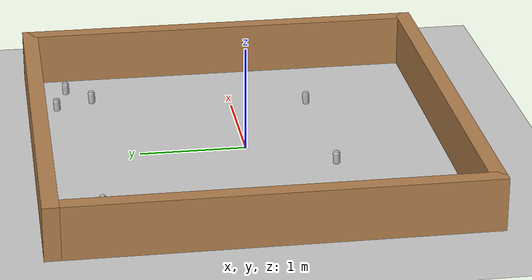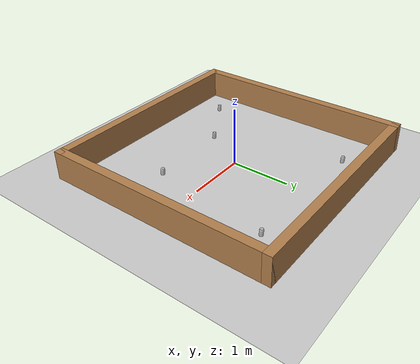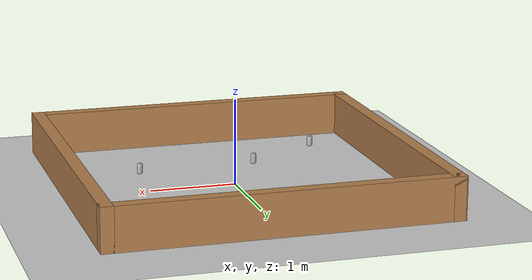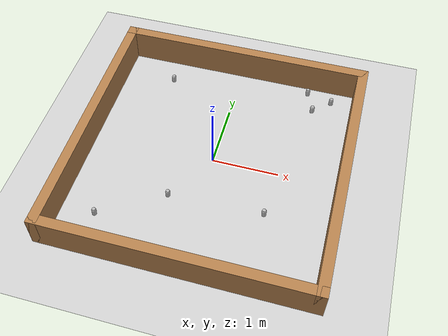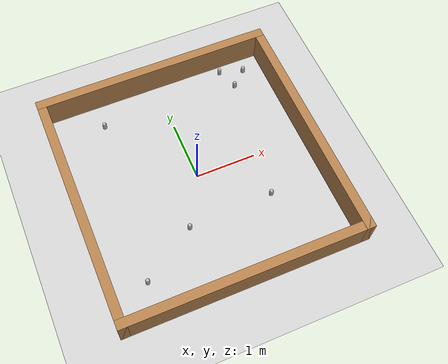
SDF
<sdf version="1.7">
 <world name="default">
  <light name="sun" type="directional">
   <pose>0 0 10 0 -0 0</pose>
   <diffuse>0.8 0.8 0.8 1</diffuse>
   <specular>0.2 0.2 0.2 1</specular>
   <attenuation>
    <range>1000</range>
    <constant>0.9</constant>
    <linear>0.01</linear>
    <quadratic>0.001</quadratic>
   </attenuation>
   <direction>-0.5 0.1 -0.9</direction>
   <spot><inner_angle>0</inner_angle><outer_angle>0</outer_angle><falloff>0</falloff></spot>
  </light>
  <model name="ground_plane">
   <static>1</static>
   <link name="link">
    <collision name="collision">
     <geometry><plane><normal>0 0 1</normal><size>100 100</size></plane></geometry>
     <surface>
      <contact><collide_bitmask>65535</collide_bitmask></contact>
      <friction><ode><mu>100</mu><mu2>50</mu2></ode></friction>
     </surface>
    </collision>
    <visual name="visual">
     <cast_shadows>0</cast_shadows>
     <geometry><plane><normal>0 0 1</normal><size>100 100</size></plane></geometry>
     <material>
      <script><uri>file://media/materials/scripts/gazebo.material</uri><name>Gazebo/Grey</name></script>
     </material>
    </visual>
   </link>
  </model>
  <physics type="ode">
   <real_time_update_rate>1000</real_time_update_rate>
   <max_step_size>0.001</max_step_size>
   <real_time_factor>1</real_time_factor>
   <ode>
    <solver>
     <type>quick</type>
     <iters>150</iters>
     <precon_iters>0</precon_iters>
     <sor>1.4</sor>
     <use_dynamic_moi_rescaling>1</use_dynamic_moi_rescaling>
    </solver>
    <constraints>
     <cfm>1e-05</cfm>
     <erp>0.2</erp>
     <contact_max_correcting_vel>2000</contact_max_correcting_vel>
     <contact_surface_layer>0.01</contact_surface_layer>
    </constraints>
   </ode>
  </physics>
  <model name="turtlebot3_square">
   <link name="Wall_0">
    <collision name="Wall_0_Collision">
     <geometry><box><size>4 0.15 0.5</size></box></geometry>
     <pose>0 0 0.25 0 -0 0</pose>
    </collision>
    <visual name="Wall_0_Visual">
     <pose>0 0 0.25 0 -0 0</pose>
     <geometry><box><size>4 0.15 0.5</size></box></geometry>
     <material>
      <script><uri>file://media/materials/scripts/gazebo.material</uri><name>Gazebo/Wood</name></script>
      <ambient>1 1 1 1</ambient>
     </material>
    </visual>
    <pose>0 1.925 0 0 -0 0</pose>
   </link>
   <link name="Wall_2">
    <collision name="Wall_2_Collision">
     <geometry><box><size>4 0.15 0.5</size></box></geometry>
     <pose>0 0 0.25 0 -0 0</pose>
    </collision>
    <visual name="Wall_2_Visual">
     <pose>0 0 0.25 0 -0 0</pose>
     <geometry><box><size>4 0.15 0.5</size></box></geometry>
     <material>
      <script><uri>file://media/materials/scripts/gazebo.material</uri><name>Gazebo/Wood</name></script>
      <ambient>1 1 1 1</ambient>
     </material>
    </visual>
    <pose>-1.925 0 0 0 0 -1.5708</pose>
   </link>
   <link name="Wall_3">
    <collision name="Wall_3_Collision">
     <geometry><box><size>4 0.15 0.5</size></box></geometry>
     <pose>0 0 0.25 0 -0 0</pose>
    </collision>
    <visual name="Wall_3_Visual">
     <pose>0 0 0.25 0 -0 0</pose>
     <geometry><box><size>4 0.15 0.5</size></box></geometry>
     <material>
      <script><uri>file://media/materials/scripts/gazebo.material</uri><name>Gazebo/Wood</name></script>
      <ambient>1 1 1 1</ambient>
     </material>
    </visual>
    <pose>0 -1.925 0 0 -0 0</pose>
   </link>
   <link name="Wall_4">
    <collision name="Wall_4_Collision">
     <geometry><box><size>4 0.15 0.5</size></box></geometry>
     <pose>0 0 0.25 0 -0 0</pose>
    </collision>
    <visual name="Wall_4_Visual">
     <pose>0 0 0.25 0 -0 0</pose>
     <geometry><box><size>4 0.15 0.5</size></box></geometry>
     <material>
      <script><uri>file://media/materials/scripts/gazebo.material</uri><name>Gazebo/Wood</name></script>
      <ambient>1 1 1 1</ambient>
     </material>
    </visual>
    <pose>1.925 0 0 0 -0 1.5708</pose>
   </link>
   <static>1</static>
  </model>
  <scene><ambient>0.4 0.4 0.4 1</ambient><background>0.7 0.7 0.7 1</background><shadows>1</shadows></scene>
  <gravity>0 0 -9.8</gravity>
  <magnetic_field>6e-06 2.3e-05 -4.2e-05</magnetic_field>
  <atmosphere type="adiabatic"/>
  <spherical_coordinates>
   <surface_model>EARTH_WGS84</surface_model>
   <latitude_deg>0</latitude_deg>
   <longitude_deg>0</longitude_deg>
   <elevation>0</elevation>
   <heading_deg>0</heading_deg>
  </spherical_coordinates>
  <model name="coke_can">
   <link name="link">
    <inertial>
     <pose>0 0 0.06 0 -0 0</pose>
     <mass>0.39</mass>
     <inertia>
      <ixx>0.00055575</ixx>
      <ixy>0</ixy>
      <ixz>0</ixz>
      <iyy>0.00055575</iyy>
      <iyz>0</iyz>
      <izz>0.0001755</izz>
     </inertia>
    </inertial>
    <collision name="collision">
     <pose>0.003937 0.004724 -0.18 0 -0 0</pose>
     <geometry><mesh><uri>model://coke_can/meshes/coke_can.dae</uri></mesh></geometry>
     <surface>
      <friction><ode><mu>1</mu><mu2>1</mu2></ode></friction>
      <contact><ode><kp>1e+07</kp><kd>1</kd><min_depth>0.001</min_depth><max_vel>0.1</max_vel></ode></contact>
     </surface>
    </collision>
    <visual name="visual">
     <pose>0.003937 0.004724 -0.18 0 -0 0</pose>
     <geometry><mesh><uri>model://coke_can/meshes/coke_can.dae</uri></mesh></geometry>
    </visual>
   </link>
   <pose>0.95288 -0.741976 -0.003068 -0.055906 -0.01249 -0.000381</pose>
  </model>
  <model name="coke_can_0">
   <link name="link">
    <inertial>
     <pose>0 0 0.06 0 -0 0</pose>
     <mass>0.39</mass>
     <inertia>
      <ixx>0.00055575</ixx>
      <ixy>0</ixy>
      <ixz>0</ixz>
      <iyy>0.00055575</iyy>
      <iyz>0</iyz>
      <izz>0.0001755</izz>
     </inertia>
    </inertial>
    <collision name="collision">
     <pose>0.003937 0.004724 -0.18 0 -0 0</pose>
     <geometry><mesh><uri>model://coke_can/meshes/coke_can.dae</uri></mesh></geometry>
     <surface>
      <friction><ode><mu>1</mu><mu2>1</mu2></ode></friction>
      <contact><ode><kp>1e+07</kp><kd>1</kd><min_depth>0.001</min_depth><max_vel>0.1</max_vel></ode></contact>
     </surface>
    </collision>
    <visual name="visual">
     <pose>0.003937 0.004724 -0.18 0 -0 0</pose>
     <geometry><mesh><uri>model://coke_can/meshes/coke_can.dae</uri></mesh></geometry>
    </visual>
   </link>
   <pose>1.52666 1.60336 -0.003009 -0.057412 -0.009563 -0.000375</pose>
  </model>
  <model name="coke_can_1">
   <link name="link">
    <inertial>
     <pose>0 0 0.06 0 -0 0</pose>
     <mass>0.39</mass>
     <inertia>
      <ixx>0.00055575</ixx>
      <ixy>0</ixy>
      <ixz>0</ixz>
      <iyy>0.00055575</iyy>
      <iyz>0</iyz>
      <izz>0.0001755</izz>
     </inertia>
    </inertial>
    <collision name="collision">
     <pose>0.003937 0.004724 -0.18 0 -0 0</pose>
     <geometry><mesh><uri>model://coke_can/meshes/coke_can.dae</uri></mesh></geometry>
     <surface>
      <friction><ode><mu>1</mu><mu2>1</mu2></ode></friction>
      <contact><ode><kp>1e+07</kp><kd>1</kd><min_depth>0.001</min_depth><max_vel>0.1</max_vel></ode></contact>
     </surface>
    </collision>
    <visual name="visual">
     <pose>0.003937 0.004724 -0.18 0 -0 0</pose>
     <geometry><mesh><uri>model://coke_can/meshes/coke_can.dae</uri></mesh></geometry>
    </visual>
   </link>
   <pose>1.13126 1.71318 -0.002943 -0.059397 -0.005828 -0.000369</pose>
  </model>
  <model name="coke_can_2">
   <link name="link">
    <inertial>
     <pose>0 0 0.06 0 -0 0</pose>
     <mass>0.39</mass>
     <inertia>
      <ixx>0.00055575</ixx>
      <ixy>0</ixy>
      <ixz>0</ixz>
      <iyy>0.00055575</iyy>
      <iyz>0</iyz>
      <izz>0.0001755</izz>
     </inertia>
    </inertial>
    <collision name="collision">
     <pose>0.003937 0.004724 -0.18 0 -0 0</pose>
     <geometry><mesh><uri>model://coke_can/meshes/coke_can.dae</uri></mesh></geometry>
     <surface>
      <friction><ode><mu>1</mu><mu2>1</mu2></ode></friction>
      <contact><ode><kp>1e+07</kp><kd>1</kd><min_depth>0.001</min_depth><max_vel>0.1</max_vel></ode></contact>
     </surface>
    </collision>
    <visual name="visual">
     <pose>0.003937 0.004724 -0.18 0 -0 0</pose>
     <geometry><mesh><uri>model://coke_can/meshes/coke_can.dae</uri></mesh></geometry>
    </visual>
   </link>
   <pose>1.26304 1.36173 -0.002878 -0.061289 -0.002264 -0.000366</pose>
  </model>
  <model name="coke_can_3">
   <link name="link">
    <inertial>
     <pose>0 0 0.06 0 -0 0</pose>
     <mass>0.39</mass>
     <inertia>
      <ixx>0.00055575</ixx>
      <ixy>0</ixy>
      <ixz>0</ixz>
      <iyy>0.00055575</iyy>
      <iyz>0</iyz>
      <izz>0.0001755</izz>
     </inertia>
    </inertial>
    <collision name="collision">
     <pose>0.003937 0.004724 -0.18 0 -0 0</pose>
     <geometry><mesh><uri>model://coke_can/meshes/coke_can.dae</uri></mesh></geometry>
     <surface>
      <friction><ode><mu>1</mu><mu2>1</mu2></ode></friction>
      <contact><ode><kp>1e+07</kp><kd>1</kd><min_depth>0.001</min_depth><max_vel>0.1</max_vel></ode></contact>
     </surface>
    </collision>
    <visual name="visual">
     <pose>0.003937 0.004724 -0.18 0 -0 0</pose>
     <geometry><mesh><uri>model://coke_can/meshes/coke_can.dae</uri></mesh></geometry>
    </visual>
   </link>
   <pose>-1.06534 1.42762 -0.002813 -0.063093 0.001137 -0.000366</pose>
  </model>
  <model name="coke_can_4">
   <link name="link">
    <inertial>
     <pose>0 0 0.06 0 -0 0</pose>
     <mass>0.39</mass>
     <inertia>
      <ixx>0.00055575</ixx>
      <ixy>0</ixy>
      <ixz>0</ixz>
      <iyy>0.00055575</iyy>
      <iyz>0</iyz>
      <izz>0.0001755</izz>
     </inertia>
    </inertial>
    <collision name="collision">
     <pose>0.003937 0.004724 -0.18 0 -0 0</pose>
     <geometry><mesh><uri>model://coke_can/meshes/coke_can.dae</uri></mesh></geometry>
     <surface>
      <friction><ode><mu>1</mu><mu2>1</mu2></ode></friction>
      <contact><ode><kp>1e+07</kp><kd>1</kd><min_depth>0.001</min_depth><max_vel>0.1</max_vel></ode></contact>
     </surface>
    </collision>
    <visual name="visual">
     <pose>0.003937 0.004724 -0.18 0 -0 0</pose>
     <geometry><mesh><uri>model://coke_can/meshes/coke_can.dae</uri></mesh></geometry>
    </visual>
   </link>
   <pose>-0.450316 -0.790914 -0.00275 -0.057165 0.006318 -0.000511</pose>
  </model>
  <model name="coke_can_5">
   <link name="link">
    <inertial>
     <pose>0 0 0.06 0 -0 0</pose>
     <mass>0.39</mass>
     <inertia>
      <ixx>0.00055575</ixx>
      <ixy>0</ixy>
      <ixz>0</ixz>
      <iyy>0.00055575</iyy>
      <iyz>0</iyz>
      <izz>0.0001755</izz>
     </inertia>
    </inertial>
    <collision name="collision">
     <pose>0.003937 0.004724 -0.18 0 -0 0</pose>
     <geometry><mesh><uri>model://coke_can/meshes/coke_can.dae</uri></mesh></geometry>
     <surface>
      <friction><ode><mu>1</mu><mu2>1</mu2></ode></friction>
      <contact><ode><kp>1e+07</kp><kd>1</kd><min_depth>0.001</min_depth><max_vel>0.1</max_vel></ode></contact>
     </surface>
    </collision>
    <visual name="visual">
     <pose>0.003937 0.004724 -0.18 0 -0 0</pose>
     <geometry><mesh><uri>model://coke_can/meshes/coke_can.dae</uri></mesh></geometry>
    </visual>
   </link>
   <pose>-1.35092 -1.36202 -0.002699 -0.055808 0.007256 -0.000496</pose>
  </model>
 </world>
</sdf>
